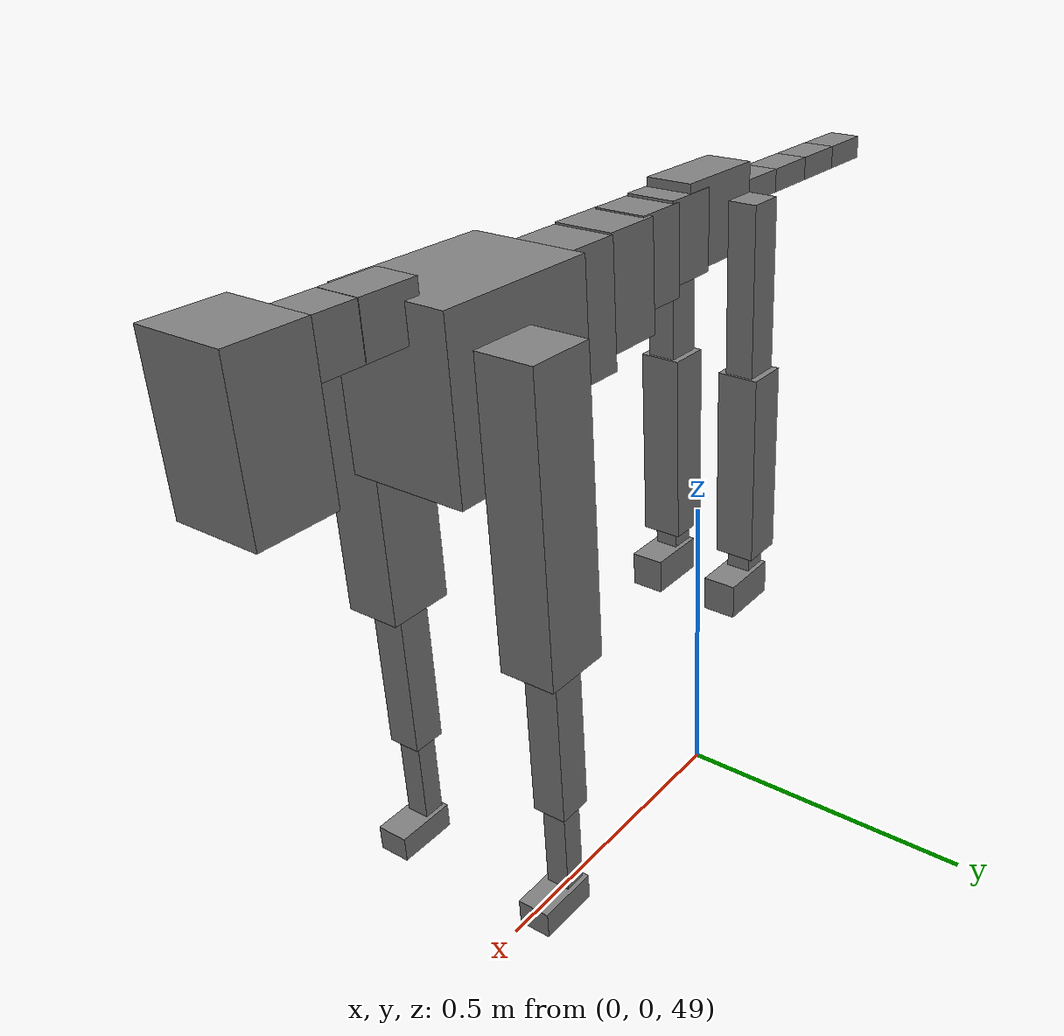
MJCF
<mujoco model="dog">

    <default>
        <joint armature="0.02" stiffness="1" damping="0.2" limited="true"/>
        <geom condim="3" friction="1 0.05 0.05" margin="0.01"/>
        <motor ctrllimited="true" ctrlrange="-1.0 1.0" forcelimited="true" gear="50"/>
    </default>

    <compiler inertiafromgeom="true" angle="radian"/>

    <option timestep="0.016" iterations="50" tolerance="1e-10" solver="Newton" jacobian="dense" cone="pyramidal"/>

    <size nconmax="20000" njmax="60000" nstack="5000000"/>
    <visual>
        <map force="0.1" zfar="30"/>
        <rgba haze="0.15 0.25 0.35 1"/>
        <quality shadowsize="2048"/>
        <global offwidth="800" offheight="800"/>
    </visual>

    <asset>
        <texture type="skybox" builtin="gradient" rgb1="0.3 0.5 0.7" rgb2="0 0 0" width="512" height="512"/>
        <texture name="texplane" type="2d" builtin="checker" rgb1=".2 .3 .4" rgb2=".1 0.15 0.2" width="512" height="512"
                 mark="cross" markrgb=".8 .8 .8"/>
        <texture name="texgeom" type="cube" builtin="flat" mark="cross" width="127" height="1278" rgb1="0.8 0.6 0.4"
                 rgb2="0.8 0.6 0.4" markrgb="1 1 1" random="0.01"/>

        <material name="matplane" reflectance="0.3" texture="texplane" texrepeat="1 1" texuniform="true"/>
        <material name="matgeom" texture="texgeom" texuniform="true" rgba="0.8 0.6 .4 1"/>
    </asset>

    <worldbody>
        <geom name="floor" pos="0 0 0" size="0 0 .25" type="plane" material="matplane" condim="3"/>

        <light directional="false" diffuse=".2 .2 .2" specular="0 0 0" pos="0 0 5" dir="0 0 -1" castshadow="false"/>
        <light mode="targetbodycom" target="torso" directional="false" diffuse=".8 .8 .8" specular="0.3 0.3 0.3"
               pos="0 0 4.0" dir="0 0 -1"/>

        <body name="root" pos="0 0 50">
            <freejoint name="root_1"/>
            <geom type="box" pos="0 0 -0.02" size="0.0774  0.0358  0.063" density="2030"/>

            <body name="spine1" pos="0.054 0 0">
                <joint name="spine1_y" axis="0 1 0" range="0 0.7" limited="true"/>
                <geom type="box" pos="0.02375 0 -0.03" size="0.04375  0.0375  0.05985" density="2030"/>

                <body name="spine2" pos="0.0612 0 0">
                    <joint name="spine2_y" axis="0 1 0" range="-0.15 0.15" limited="true"/>
                    <geom type="box" pos="0.03555  0  -0.04" size="0.04055  0.039  0.06615" density="2030"/>

                    <body name="spine3" pos="0.0730 0 0">
                        <joint name="spine3_y" axis="0 1 0" range="-0.15 0.15" limited="true"/>
                        <geom type="box" pos="0.03555  0  -0.057" size="0.04555  0.0445  0.081" density="2030"/>

                        <body name="spine4" pos="0.0780 0 0">
                            <joint name="spine4_y" axis="0 1 0" range="-0.15 0.15" limited="true"/>
                            <geom type="box" pos="0.05265  0  -0.07" size="0.05265  0.045  0.09135" density="2030"/>

                            <body name="torso" pos="0.1082 0 0">
                                <joint name="torso_y" axis="0 1 0" range="-0.15 0.15" limited="true"/>
                                <geom type="box" pos="0.11925  0  -0.085" size="0.11925  0.085  0.11745"
                                      density="2030"/>

                                <body name="neck1" pos="0.2160  0   0.0180">
                                    <joint name="neck1_y" axis="0 1 0" range="-1.2  -1" limited="true"/>
                                    <geom type="box" pos="0.0423  0  0" size="0.0423  0.03  0.036" density="2325"/>

                                    <body name="neck2" pos="0.0853  0  0">
                                        <joint name="neck2_y" axis="0 1 0" range="0.1  0" limited="true"/>
                                        <geom type="box" pos="0.0423  0  0" size="0.0423  0.03  0.036" density="2325"/>

                                        <body name="head" pos="0.0853  0  0">
                                            <joint name="head_y" axis="0 1 0" range="-0.3  -0.2" limited="true"/>
                                            <geom type="box" pos="0.0531  0  -0.055" size="0.0531  0.06  0.1044"
                                                  density="4030"/>

                                        </body>
                                    </body>
                                </body>

                                <body name="front_shoulder" pos="0.156  0   -0.0480">
                                    <joint name="front_shoulder_y" axis="0 1 0" range="-1 1.5" limited="true"/>
                                    <geom type="box" pos="0 0.13 -0.1825" size="0.0479  0.0410  0.2092" density="1158"/>
                                    <geom type="box" pos="0 -0.13 -0.1825" size="0.0479  0.0410  0.2092"
                                          density="1158"/>

                                    <body name="front_elbow" pos="0  0  -0.3651">
                                        <joint name="front_elbow_y" axis="0 1 0" range="-2 0" limited="true"/>
                                        <geom type="box" pos="0 0.13 -0.1262" size="0.0243  0.0248  0.1262"
                                              density="1081"/>
                                        <geom type="box" pos="0 -0.13 -0.1262" size="0.0243  0.0248  0.1262"
                                              density="1081"/>

                                        <body name="front_wrist" pos="0  0  -0.2524">
                                            <joint name="front_wrist_y" axis="0 1 0" range="-0.2 0" limited="true"/>
                                            <geom type="box" pos="0 0.13 -0.0720" size="0.0157  0.0175  0.0851"
                                                  density="1664"/>
                                            <geom type="box" pos="0 -0.13 -0.0720" size="0.0157  0.0175  0.0851"
                                                  density="1664"/>

                                            <body name="front_finger_end" pos="0  0  -0.1439">
                                                <joint name="front_finger_y" axis="0 1 0" range="-0.4 1"
                                                       limited="true"/>
                                                <geom type="box" pos="0.0242  0.13  -0.0043"
                                                      size="0.0443  0.0242  0.0193" density="1515"/>
                                                <geom type="box" pos="0.0242  -0.13  -0.0043"
                                                      size="0.0443  0.0242  0.0193" density="1515"/>

                                            </body>

                                        </body>
                                    </body>
                                </body>

                            </body>
                        </body>
                    </body>
                </body>
            </body>

            <body name="back_hip" pos="-0.03 0 -0.018">
                <joint name="back_hip_y" axis="0 1 0" range="-1.5 0.3" limited="true"/>
                <geom type="box" pos="0 0.07 -0.1261" size="0.0286  0.0224  0.1489" density="1154"/>
                <geom type="box" pos="0 -0.07 -0.1261" size="0.0286  0.0224  0.1489" density="1154"/>

                <body name="back_knee" pos="0  0  -0.2521">
                    <joint name="back_knee_y" axis="0 1 0" range="0 2.8" limited="true"/>
                    <geom type="box" pos="0 0.07 -0.1375" size="0.0332  0.0327  0.1531" density="1227"/>
                    <geom type="box" pos="0 -0.07 -0.1375" size="0.0332  0.0327  0.1531" density="1227"/>

                    <body name="back_ankle" pos="0  0  -0.2751">
                        <joint name="back_ankle_y" axis="0 1 0" range="-2.2 0" limited="true"/>
                        <geom type="box" pos="0 0.07 -0.0302" size="0.0194  0.0194  0.0415" density="1284"/>
                        <geom type="box" pos="0 -0.07 -0.0302" size="0.0194  0.0194  0.0415" density="1284"/>

                        <body name="back_toe_end" pos="0  0  -0.0604">
                            <joint name="back_toe_y" axis="0 1 0" range="-0.4 1" limited="true"/>
                            <geom type="box" pos="0.0268  0.07  -0.0130" size="0.0492  0.0268  0.0280" density="1515"/>
                            <geom type="box" pos="0.0268  -0.07  -0.0130" size="0.0492  0.0268  0.0280" density="1515"/>

                        </body>
                    </body>
                </body>
            </body>

            <body name="tail1" pos="-0.074 0 -0.006">
                <joint name="tail1_y" axis="0 1 0" range="-0.2 0.2" limited="true"/>
                <geom type="box" pos="-0.0536  0  0" size="0.045  0.025  0.0175" density="1587"/>

                <body name="tail2" pos="-0.09 0 0">
                    <joint name="tail2_y" axis="0 1 0" range="-0.2 0.2" limited="true"/>
                    <geom type="box" pos="-0.0536  0  0" size="0.045  0.025  0.0175" density="1587"/>

                    <body name="tail3" pos="-0.09 0 0">
                        <joint name="tail3_y" axis="0 1 0" range="-0.2 0.2" limited="true"/>
                        <geom type="box" pos="-0.0536  0  0" size="0.045  0.025  0.0175" density="1587"/>

                        <body name="tail4" pos="-0.09 0 0">
                            <joint name="tail4_y" axis="0 1 0" range="-0.2 0.2" limited="true"/>
                            <geom type="box" pos="-0.0536  0  0" size="0.045  0.025  0.0175" density="1587"/>

                        </body>
                    </body>
                </body>
            </body>
        </body>
    </worldbody>

    <actuator>
        <motor joint="spine1_y" forcerange="-150 150     "/>
        <motor joint="spine2_y" forcerange="-150 150     "/>
        <motor joint="spine3_y" forcerange="-150 150     "/>
        <motor joint="spine4_y" forcerange="-150 150     "/>
        <motor joint="torso_y" forcerange="-150 150     "/>
        <motor joint="neck1_y" forcerange="-100 100       "/>
        <motor joint="neck2_y" forcerange="-100 100       "/>
        <motor joint="head_y" forcerange="-150 150       "/>
        <motor joint="front_shoulder_y" forcerange="-197.11 175.98"/>
        <motor joint="front_elbow_y" forcerange="-155.68 124.84"/>
        <motor joint="front_wrist_y" forcerange="-56.46 83.50"/>
        <motor joint="front_finger_y" forcerange="-60.66 28.26"/>
        <motor joint="back_hip_y" forcerange="-291.06 207.58"/>
        <motor joint="back_knee_y" forcerange="-281.12 394.86"/>
        <motor joint="back_angle_y" forcerange="-135.03 75.89"/>
        <motor joint="back_toe_y" forcerange="-43.93 90.78"/>
        <motor joint="tail1_y" forcerange="-50 50     "/>
        <motor joint="tail2_y" forcerange="-50 50     "/>
        <motor joint="tail3_y" forcerange="-50 50     "/>
        <motor joint="tail4_y" forcerange="-50 50     "/>
    </actuator>
</mujoco>
